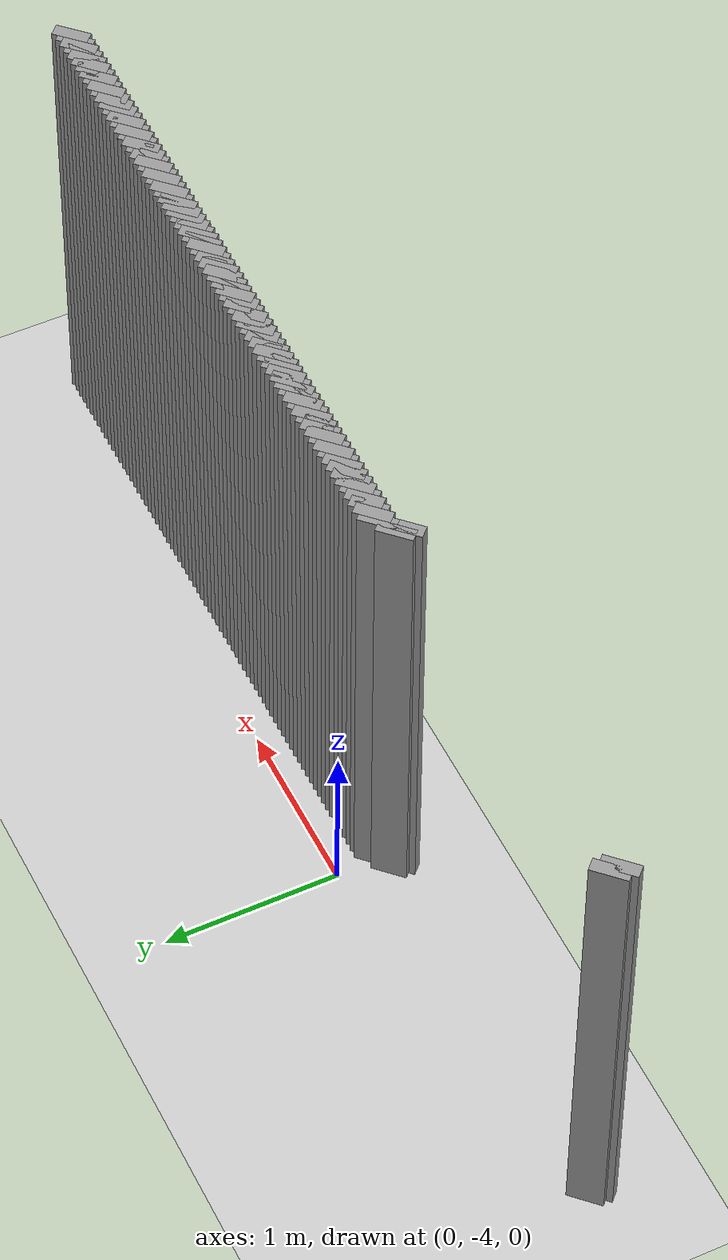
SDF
<sdf version="1.5">
 <world name="default">
  <include><uri>model://ground_plane</uri></include>
  <include><uri>model://sun</uri></include>
  <model name="grey_wall_1256">
   <static>1</static>
   <link name="link">
    <pose>0.025 -4.225  1.4 0 0 -0.785398163397</pose>
    <collision name="collision"><geometry><box><size>0.0707106781187 .2  2.8</size></box></geometry></collision>
    <visual name="visual">
     <cast_shadows>0</cast_shadows>
     <geometry><box><size>0.0707106781187 .2  2.8</size></box></geometry>
     <material>
      <script>
       <uri>model://grey_wall/materials/scripts</uri>
       <uri>model://grey_wall/materials/textures</uri>
       <name>vrc/grey_wall</name>
      </script>
     </material>
    </visual>
   </link>
  </model>
  <model name="grey_wall_1257">
   <static>1</static>
   <link name="link">
    <pose>0.075 -4.225  1.4 0 0 -0.785398163397</pose>
    <collision name="collision"><geometry><box><size>0.0707106781187 .2  2.8</size></box></geometry></collision>
    <visual name="visual">
     <cast_shadows>0</cast_shadows>
     <geometry><box><size>0.0707106781187 .2  2.8</size></box></geometry>
     <material>
      <script>
       <uri>model://grey_wall/materials/scripts</uri>
       <uri>model://grey_wall/materials/textures</uri>
       <name>vrc/grey_wall</name>
      </script>
     </material>
    </visual>
   </link>
  </model>
  <model name="grey_wall_1258">
   <static>1</static>
   <link name="link">
    <pose>0.125 -4.225  1.4 0 0 -0.785398163397</pose>
    <collision name="collision"><geometry><box><size>0.0707106781187 .2  2.8</size></box></geometry></collision>
    <visual name="visual">
     <cast_shadows>0</cast_shadows>
     <geometry><box><size>0.0707106781187 .2  2.8</size></box></geometry>
     <material>
      <script>
       <uri>model://grey_wall/materials/scripts</uri>
       <uri>model://grey_wall/materials/textures</uri>
       <name>vrc/grey_wall</name>
      </script>
     </material>
    </visual>
   </link>
  </model>
  <model name="grey_wall_1259">
   <static>1</static>
   <link name="link">
    <pose>0.175 -4.225  1.4 0 0 -0.785398163397</pose>
    <collision name="collision"><geometry><box><size>0.0707106781187 .2  2.8</size></box></geometry></collision>
    <visual name="visual">
     <cast_shadows>0</cast_shadows>
     <geometry><box><size>0.0707106781187 .2  2.8</size></box></geometry>
     <material>
      <script>
       <uri>model://grey_wall/materials/scripts</uri>
       <uri>model://grey_wall/materials/textures</uri>
       <name>vrc/grey_wall</name>
      </script>
     </material>
    </visual>
   </link>
  </model>
  <model name="grey_wall_1260">
   <static>1</static>
   <link name="link">
    <pose>0.225 -4.225  1.4 0 0 -0.785398163397</pose>
    <collision name="collision"><geometry><box><size>0.0707106781187 .2  2.8</size></box></geometry></collision>
    <visual name="visual">
     <cast_shadows>0</cast_shadows>
     <geometry><box><size>0.0707106781187 .2  2.8</size></box></geometry>
     <material>
      <script>
       <uri>model://grey_wall/materials/scripts</uri>
       <uri>model://grey_wall/materials/textures</uri>
       <name>vrc/grey_wall</name>
      </script>
     </material>
    </visual>
   </link>
  </model>
  <model name="grey_wall_1261">
   <static>1</static>
   <link name="link">
    <pose>0.275 -4.225  1.4 0 0 -0.785398163397</pose>
    <collision name="collision"><geometry><box><size>0.0707106781187 .2  2.8</size></box></geometry></collision>
    <visual name="visual">
     <cast_shadows>0</cast_shadows>
     <geometry><box><size>0.0707106781187 .2  2.8</size></box></geometry>
     <material>
      <script>
       <uri>model://grey_wall/materials/scripts</uri>
       <uri>model://grey_wall/materials/textures</uri>
       <name>vrc/grey_wall</name>
      </script>
     </material>
    </visual>
   </link>
  </model>
  <model name="grey_wall_1262">
   <static>1</static>
   <link name="link">
    <pose>0.325 -4.225  1.4 0 0 -0.785398163397</pose>
    <collision name="collision"><geometry><box><size>0.0707106781187 .2  2.8</size></box></geometry></collision>
    <visual name="visual">
     <cast_shadows>0</cast_shadows>
     <geometry><box><size>0.0707106781187 .2  2.8</size></box></geometry>
     <material>
      <script>
       <uri>model://grey_wall/materials/scripts</uri>
       <uri>model://grey_wall/materials/textures</uri>
       <name>vrc/grey_wall</name>
      </script>
     </material>
    </visual>
   </link>
  </model>
  <model name="grey_wall_1263">
   <static>1</static>
   <link name="link">
    <pose>0.375 -4.225  1.4 0 0 -0.785398163397</pose>
    <collision name="collision"><geometry><box><size>0.0707106781187 .2  2.8</size></box></geometry></collision>
    <visual name="visual">
     <cast_shadows>0</cast_shadows>
     <geometry><box><size>0.0707106781187 .2  2.8</size></box></geometry>
     <material>
      <script>
       <uri>model://grey_wall/materials/scripts</uri>
       <uri>model://grey_wall/materials/textures</uri>
       <name>vrc/grey_wall</name>
      </script>
     </material>
    </visual>
   </link>
  </model>
  <model name="grey_wall_1264">
   <static>1</static>
   <link name="link">
    <pose>0.425 -4.225  1.4 0 0 -0.785398163397</pose>
    <collision name="collision"><geometry><box><size>0.0707106781187 .2  2.8</size></box></geometry></collision>
    <visual name="visual">
     <cast_shadows>0</cast_shadows>
     <geometry><box><size>0.0707106781187 .2  2.8</size></box></geometry>
     <material>
      <script>
       <uri>model://grey_wall/materials/scripts</uri>
       <uri>model://grey_wall/materials/textures</uri>
       <name>vrc/grey_wall</name>
      </script>
     </material>
    </visual>
   </link>
  </model>
  <model name="grey_wall_1265">
   <static>1</static>
   <link name="link">
    <pose>0.475 -4.225  1.4 0 0 -0.785398163397</pose>
    <collision name="collision"><geometry><box><size>0.0707106781187 .2  2.8</size></box></geometry></collision>
    <visual name="visual">
     <cast_shadows>0</cast_shadows>
     <geometry><box><size>0.0707106781187 .2  2.8</size></box></geometry>
     <material>
      <script>
       <uri>model://grey_wall/materials/scripts</uri>
       <uri>model://grey_wall/materials/textures</uri>
       <name>vrc/grey_wall</name>
      </script>
     </material>
    </visual>
   </link>
  </model>
  <model name="grey_wall_1266">
   <static>1</static>
   <link name="link">
    <pose>0.525 -4.225  1.4 0 0 -0.785398163397</pose>
    <collision name="collision"><geometry><box><size>0.0707106781187 .2  2.8</size></box></geometry></collision>
    <visual name="visual">
     <cast_shadows>0</cast_shadows>
     <geometry><box><size>0.0707106781187 .2  2.8</size></box></geometry>
     <material>
      <script>
       <uri>model://grey_wall/materials/scripts</uri>
       <uri>model://grey_wall/materials/textures</uri>
       <name>vrc/grey_wall</name>
      </script>
     </material>
    </visual>
   </link>
  </model>
  <model name="grey_wall_1267">
   <static>1</static>
   <link name="link">
    <pose>0.575 -4.225  1.4 0 0 -0.785398163397</pose>
    <collision name="collision"><geometry><box><size>0.0707106781187 .2  2.8</size></box></geometry></collision>
    <visual name="visual">
     <cast_shadows>0</cast_shadows>
     <geometry><box><size>0.0707106781187 .2  2.8</size></box></geometry>
     <material>
      <script>
       <uri>model://grey_wall/materials/scripts</uri>
       <uri>model://grey_wall/materials/textures</uri>
       <name>vrc/grey_wall</name>
      </script>
     </material>
    </visual>
   </link>
  </model>
  <model name="grey_wall_1268">
   <static>1</static>
   <link name="link">
    <pose>0.625 -4.225  1.4 0 0 -0.785398163397</pose>
    <collision name="collision"><geometry><box><size>0.0707106781187 .2  2.8</size></box></geometry></collision>
    <visual name="visual">
     <cast_shadows>0</cast_shadows>
     <geometry><box><size>0.0707106781187 .2  2.8</size></box></geometry>
     <material>
      <script>
       <uri>model://grey_wall/materials/scripts</uri>
       <uri>model://grey_wall/materials/textures</uri>
       <name>vrc/grey_wall</name>
      </script>
     </material>
    </visual>
   </link>
  </model>
  <model name="grey_wall_1269">
   <static>1</static>
   <link name="link">
    <pose>0.675 -4.225  1.4 0 0 -0.785398163397</pose>
    <collision name="collision"><geometry><box><size>0.0707106781187 .2  2.8</size></box></geometry></collision>
    <visual name="visual">
     <cast_shadows>0</cast_shadows>
     <geometry><box><size>0.0707106781187 .2  2.8</size></box></geometry>
     <material>
      <script>
       <uri>model://grey_wall/materials/scripts</uri>
       <uri>model://grey_wall/materials/textures</uri>
       <name>vrc/grey_wall</name>
      </script>
     </material>
    </visual>
   </link>
  </model>
  <model name="grey_wall_1270">
   <static>1</static>
   <link name="link">
    <pose>0.725 -4.225  1.4 0 0 -0.785398163397</pose>
    <collision name="collision"><geometry><box><size>0.0707106781187 .2  2.8</size></box></geometry></collision>
    <visual name="visual">
     <cast_shadows>0</cast_shadows>
     <geometry><box><size>0.0707106781187 .2  2.8</size></box></geometry>
     <material>
      <script>
       <uri>model://grey_wall/materials/scripts</uri>
       <uri>model://grey_wall/materials/textures</uri>
       <name>vrc/grey_wall</name>
      </script>
     </material>
    </visual>
   </link>
  </model>
  <model name="grey_wall_1271">
   <static>1</static>
   <link name="link">
    <pose>0.775 -4.225  1.4 0 0 -0.785398163397</pose>
    <collision name="collision"><geometry><box><size>0.0707106781187 .2  2.8</size></box></geometry></collision>
    <visual name="visual">
     <cast_shadows>0</cast_shadows>
     <geometry><box><size>0.0707106781187 .2  2.8</size></box></geometry>
     <material>
      <script>
       <uri>model://grey_wall/materials/scripts</uri>
       <uri>model://grey_wall/materials/textures</uri>
       <name>vrc/grey_wall</name>
      </script>
     </material>
    </visual>
   </link>
  </model>
  <model name="grey_wall_1272">
   <static>1</static>
   <link name="link">
    <pose>0.825 -4.225  1.4 0 0 -0.785398163397</pose>
    <collision name="collision"><geometry><box><size>0.0707106781187 .2  2.8</size></box></geometry></collision>
    <visual name="visual">
     <cast_shadows>0</cast_shadows>
     <geometry><box><size>0.0707106781187 .2  2.8</size></box></geometry>
     <material>
      <script>
       <uri>model://grey_wall/materials/scripts</uri>
       <uri>model://grey_wall/materials/textures</uri>
       <name>vrc/grey_wall</name>
      </script>
     </material>
    </visual>
   </link>
  </model>
  <model name="grey_wall_1273">
   <static>1</static>
   <link name="link">
    <pose>0.875 -4.225  1.4 0 0 -0.785398163397</pose>
    <collision name="collision"><geometry><box><size>0.0707106781187 .2  2.8</size></box></geometry></collision>
    <visual name="visual">
     <cast_shadows>0</cast_shadows>
     <geometry><box><size>0.0707106781187 .2  2.8</size></box></geometry>
     <material>
      <script>
       <uri>model://grey_wall/materials/scripts</uri>
       <uri>model://grey_wall/materials/textures</uri>
       <name>vrc/grey_wall</name>
      </script>
     </material>
    </visual>
   </link>
  </model>
  <model name="grey_wall_1274">
   <static>1</static>
   <link name="link">
    <pose>0.925 -4.225  1.4 0 0 -0.785398163397</pose>
    <collision name="collision"><geometry><box><size>0.0707106781187 .2  2.8</size></box></geometry></collision>
    <visual name="visual">
     <cast_shadows>0</cast_shadows>
     <geometry><box><size>0.0707106781187 .2  2.8</size></box></geometry>
     <material>
      <script>
       <uri>model://grey_wall/materials/scripts</uri>
       <uri>model://grey_wall/materials/textures</uri>
       <name>vrc/grey_wall</name>
      </script>
     </material>
    </visual>
   </link>
  </model>
  <model name="grey_wall_1275">
   <static>1</static>
   <link name="link">
    <pose>0.975 -4.225  1.4 0 0 -0.785398163397</pose>
    <collision name="collision"><geometry><box><size>0.0707106781187 .2  2.8</size></box></geometry></collision>
    <visual name="visual">
     <cast_shadows>0</cast_shadows>
     <geometry><box><size>0.0707106781187 .2  2.8</size></box></geometry>
     <material>
      <script>
       <uri>model://grey_wall/materials/scripts</uri>
       <uri>model://grey_wall/materials/textures</uri>
       <name>vrc/grey_wall</name>
      </script>
     </material>
    </visual>
   </link>
  </model>
  <model name="grey_wall_1276">
   <static>1</static>
   <link name="link">
    <pose>1.025 -4.225  1.4 0 0 -0.785398163397</pose>
    <collision name="collision"><geometry><box><size>0.0707106781187 .2  2.8</size></box></geometry></collision>
    <visual name="visual">
     <cast_shadows>0</cast_shadows>
     <geometry><box><size>0.0707106781187 .2  2.8</size></box></geometry>
     <material>
      <script>
       <uri>model://grey_wall/materials/scripts</uri>
       <uri>model://grey_wall/materials/textures</uri>
       <name>vrc/grey_wall</name>
      </script>
     </material>
    </visual>
   </link>
  </model>
  <model name="grey_wall_1277">
   <static>1</static>
   <link name="link">
    <pose>1.075 -4.225  1.4 0 0 -0.785398163397</pose>
    <collision name="collision"><geometry><box><size>0.0707106781187 .2  2.8</size></box></geometry></collision>
    <visual name="visual">
     <cast_shadows>0</cast_shadows>
     <geometry><box><size>0.0707106781187 .2  2.8</size></box></geometry>
     <material>
      <script>
       <uri>model://grey_wall/materials/scripts</uri>
       <uri>model://grey_wall/materials/textures</uri>
       <name>vrc/grey_wall</name>
      </script>
     </material>
    </visual>
   </link>
  </model>
  <model name="grey_wall_1278">
   <static>1</static>
   <link name="link">
    <pose>1.125 -4.225  1.4 0 0 -0.785398163397</pose>
    <collision name="collision"><geometry><box><size>0.0707106781187 .2  2.8</size></box></geometry></collision>
    <visual name="visual">
     <cast_shadows>0</cast_shadows>
     <geometry><box><size>0.0707106781187 .2  2.8</size></box></geometry>
     <material>
      <script>
       <uri>model://grey_wall/materials/scripts</uri>
       <uri>model://grey_wall/materials/textures</uri>
       <name>vrc/grey_wall</name>
      </script>
     </material>
    </visual>
   </link>
  </model>
  <model name="grey_wall_1279">
   <static>1</static>
   <link name="link">
    <pose>1.175 -4.225  1.4 0 0 -0.785398163397</pose>
    <collision name="collision"><geometry><box><size>0.0707106781187 .2  2.8</size></box></geometry></collision>
    <visual name="visual">
     <cast_shadows>0</cast_shadows>
     <geometry><box><size>0.0707106781187 .2  2.8</size></box></geometry>
     <material>
      <script>
       <uri>model://grey_wall/materials/scripts</uri>
       <uri>model://grey_wall/materials/textures</uri>
       <name>vrc/grey_wall</name>
      </script>
     </material>
    </visual>
   </link>
  </model>
  <model name="grey_wall_1280">
   <static>1</static>
   <link name="link">
    <pose>1.225 -4.225  1.4 0 0 -0.785398163397</pose>
    <collision name="collision"><geometry><box><size>0.0707106781187 .2  2.8</size></box></geometry></collision>
    <visual name="visual">
     <cast_shadows>0</cast_shadows>
     <geometry><box><size>0.0707106781187 .2  2.8</size></box></geometry>
     <material>
      <script>
       <uri>model://grey_wall/materials/scripts</uri>
       <uri>model://grey_wall/materials/textures</uri>
       <name>vrc/grey_wall</name>
      </script>
     </material>
    </visual>
   </link>
  </model>
  <model name="grey_wall_1281">
   <static>1</static>
   <link name="link">
    <pose>1.275 -4.225  1.4 0 0 -0.785398163397</pose>
    <collision name="collision"><geometry><box><size>0.0707106781187 .2  2.8</size></box></geometry></collision>
    <visual name="visual">
     <cast_shadows>0</cast_shadows>
     <geometry><box><size>0.0707106781187 .2  2.8</size></box></geometry>
     <material>
      <script>
       <uri>model://grey_wall/materials/scripts</uri>
       <uri>model://grey_wall/materials/textures</uri>
       <name>vrc/grey_wall</name>
      </script>
     </material>
    </visual>
   </link>
  </model>
  <model name="grey_wall_1282">
   <static>1</static>
   <link name="link">
    <pose>1.325 -4.225  1.4 0 0 -0.785398163397</pose>
    <collision name="collision"><geometry><box><size>0.0707106781187 .2  2.8</size></box></geometry></collision>
    <visual name="visual">
     <cast_shadows>0</cast_shadows>
     <geometry><box><size>0.0707106781187 .2  2.8</size></box></geometry>
     <material>
      <script>
       <uri>model://grey_wall/materials/scripts</uri>
       <uri>model://grey_wall/materials/textures</uri>
       <name>vrc/grey_wall</name>
      </script>
     </material>
    </visual>
   </link>
  </model>
  <model name="grey_wall_1283">
   <static>1</static>
   <link name="link">
    <pose>1.375 -4.225  1.4 0 0 -0.785398163397</pose>
    <collision name="collision"><geometry><box><size>0.0707106781187 .2  2.8</size></box></geometry></collision>
    <visual name="visual">
     <cast_shadows>0</cast_shadows>
     <geometry><box><size>0.0707106781187 .2  2.8</size></box></geometry>
     <material>
      <script>
       <uri>model://grey_wall/materials/scripts</uri>
       <uri>model://grey_wall/materials/textures</uri>
       <name>vrc/grey_wall</name>
      </script>
     </material>
    </visual>
   </link>
  </model>
  <model name="grey_wall_1284">
   <static>1</static>
   <link name="link">
    <pose>1.425 -4.225  1.4 0 0 -0.785398163397</pose>
    <collision name="collision"><geometry><box><size>0.0707106781187 .2  2.8</size></box></geometry></collision>
    <visual name="visual">
     <cast_shadows>0</cast_shadows>
     <geometry><box><size>0.0707106781187 .2  2.8</size></box></geometry>
     <material>
      <script>
       <uri>model://grey_wall/materials/scripts</uri>
       <uri>model://grey_wall/materials/textures</uri>
       <name>vrc/grey_wall</name>
      </script>
     </material>
    </visual>
   </link>
  </model>
  <model name="grey_wall_1285">
   <static>1</static>
   <link name="link">
    <pose>1.475 -4.225  1.4 0 0 -0.785398163397</pose>
    <collision name="collision"><geometry><box><size>0.0707106781187 .2  2.8</size></box></geometry></collision>
    <visual name="visual">
     <cast_shadows>0</cast_shadows>
     <geometry><box><size>0.0707106781187 .2  2.8</size></box></geometry>
     <material>
      <script>
       <uri>model://grey_wall/materials/scripts</uri>
       <uri>model://grey_wall/materials/textures</uri>
       <name>vrc/grey_wall</name>
      </script>
     </material>
    </visual>
   </link>
  </model>
  <model name="grey_wall_1286">
   <static>1</static>
   <link name="link">
    <pose>1.525 -4.225  1.4 0 0 -0.785398163397</pose>
    <collision name="collision"><geometry><box><size>0.0707106781187 .2  2.8</size></box></geometry></collision>
    <visual name="visual">
     <cast_shadows>0</cast_shadows>
     <geometry><box><size>0.0707106781187 .2  2.8</size></box></geometry>
     <material>
      <script>
       <uri>model://grey_wall/materials/scripts</uri>
       <uri>model://grey_wall/materials/textures</uri>
       <name>vrc/grey_wall</name>
      </script>
     </material>
    </visual>
   </link>
  </model>
  <model name="grey_wall_1287">
   <static>1</static>
   <link name="link">
    <pose>1.575 -4.225  1.4 0 0 -0.785398163397</pose>
    <collision name="collision"><geometry><box><size>0.0707106781187 .2  2.8</size></box></geometry></collision>
    <visual name="visual">
     <cast_shadows>0</cast_shadows>
     <geometry><box><size>0.0707106781187 .2  2.8</size></box></geometry>
     <material>
      <script>
       <uri>model://grey_wall/materials/scripts</uri>
       <uri>model://grey_wall/materials/textures</uri>
       <name>vrc/grey_wall</name>
      </script>
     </material>
    </visual>
   </link>
  </model>
  <model name="grey_wall_1288">
   <static>1</static>
   <link name="link">
    <pose>1.625 -4.225  1.4 0 0 -0.785398163397</pose>
    <collision name="collision"><geometry><box><size>0.0707106781187 .2  2.8</size></box></geometry></collision>
    <visual name="visual">
     <cast_shadows>0</cast_shadows>
     <geometry><box><size>0.0707106781187 .2  2.8</size></box></geometry>
     <material>
      <script>
       <uri>model://grey_wall/materials/scripts</uri>
       <uri>model://grey_wall/materials/textures</uri>
       <name>vrc/grey_wall</name>
      </script>
     </material>
    </visual>
   </link>
  </model>
  <model name="grey_wall_1289">
   <static>1</static>
   <link name="link">
    <pose>1.675 -4.225  1.4 0 0 -0.785398163397</pose>
    <collision name="collision"><geometry><box><size>0.0707106781187 .2  2.8</size></box></geometry></collision>
    <visual name="visual">
     <cast_shadows>0</cast_shadows>
     <geometry><box><size>0.0707106781187 .2  2.8</size></box></geometry>
     <material>
      <script>
       <uri>model://grey_wall/materials/scripts</uri>
       <uri>model://grey_wall/materials/textures</uri>
       <name>vrc/grey_wall</name>
      </script>
     </material>
    </visual>
   </link>
  </model>
  <model name="grey_wall_1290">
   <static>1</static>
   <link name="link">
    <pose>1.725 -4.225  1.4 0 0 -0.785398163397</pose>
    <collision name="collision"><geometry><box><size>0.0707106781187 .2  2.8</size></box></geometry></collision>
    <visual name="visual">
     <cast_shadows>0</cast_shadows>
     <geometry><box><size>0.0707106781187 .2  2.8</size></box></geometry>
     <material>
      <script>
       <uri>model://grey_wall/materials/scripts</uri>
       <uri>model://grey_wall/materials/textures</uri>
       <name>vrc/grey_wall</name>
      </script>
     </material>
    </visual>
   </link>
  </model>
  <model name="grey_wall_1291">
   <static>1</static>
   <link name="link">
    <pose>1.775 -4.225  1.4 0 0 -0.785398163397</pose>
    <collision name="collision"><geometry><box><size>0.0707106781187 .2  2.8</size></box></geometry></collision>
    <visual name="visual">
     <cast_shadows>0</cast_shadows>
     <geometry><box><size>0.0707106781187 .2  2.8</size></box></geometry>
     <material>
      <script>
       <uri>model://grey_wall/materials/scripts</uri>
       <uri>model://grey_wall/materials/textures</uri>
       <name>vrc/grey_wall</name>
      </script>
     </material>
    </visual>
   </link>
  </model>
  <model name="grey_wall_1292">
   <static>1</static>
   <link name="link">
    <pose>1.825 -4.225  1.4 0 0 -0.785398163397</pose>
    <collision name="collision"><geometry><box><size>0.0707106781187 .2  2.8</size></box></geometry></collision>
    <visual name="visual">
     <cast_shadows>0</cast_shadows>
     <geometry><box><size>0.0707106781187 .2  2.8</size></box></geometry>
     <material>
      <script>
       <uri>model://grey_wall/materials/scripts</uri>
       <uri>model://grey_wall/materials/textures</uri>
       <name>vrc/grey_wall</name>
      </script>
     </material>
    </visual>
   </link>
  </model>
  <model name="grey_wall_1293">
   <static>1</static>
   <link name="link">
    <pose>1.875 -4.225  1.4 0 0 -0.785398163397</pose>
    <collision name="collision"><geometry><box><size>0.0707106781187 .2  2.8</size></box></geometry></collision>
    <visual name="visual">
     <cast_shadows>0</cast_shadows>
     <geometry><box><size>0.0707106781187 .2  2.8</size></box></geometry>
     <material>
      <script>
       <uri>model://grey_wall/materials/scripts</uri>
       <uri>model://grey_wall/materials/textures</uri>
       <name>vrc/grey_wall</name>
      </script>
     </material>
    </visual>
   </link>
  </model>
  <model name="grey_wall_1294">
   <static>1</static>
   <link name="link">
    <pose>1.925 -4.225  1.4 0 0 -0.785398163397</pose>
    <collision name="collision"><geometry><box><size>0.0707106781187 .2  2.8</size></box></geometry></collision>
    <visual name="visual">
     <cast_shadows>0</cast_shadows>
     <geometry><box><size>0.0707106781187 .2  2.8</size></box></geometry>
     <material>
      <script>
       <uri>model://grey_wall/materials/scripts</uri>
       <uri>model://grey_wall/materials/textures</uri>
       <name>vrc/grey_wall</name>
      </script>
     </material>
    </visual>
   </link>
  </model>
  <model name="grey_wall_1295">
   <static>1</static>
   <link name="link">
    <pose>1.975 -4.225  1.4 0 0 -0.785398163397</pose>
    <collision name="collision"><geometry><box><size>0.0707106781187 .2  2.8</size></box></geometry></collision>
    <visual name="visual">
     <cast_shadows>0</cast_shadows>
     <geometry><box><size>0.0707106781187 .2  2.8</size></box></geometry>
     <material>
      <script>
       <uri>model://grey_wall/materials/scripts</uri>
       <uri>model://grey_wall/materials/textures</uri>
       <name>vrc/grey_wall</name>
      </script>
     </material>
    </visual>
   </link>
  </model>
  <model name="grey_wall_1296">
   <static>1</static>
   <link name="link">
    <pose>2.025 -4.225  1.4 0 0 -0.785398163397</pose>
    <collision name="collision"><geometry><box><size>0.0707106781187 .2  2.8</size></box></geometry></collision>
    <visual name="visual">
     <cast_shadows>0</cast_shadows>
     <geometry><box><size>0.0707106781187 .2  2.8</size></box></geometry>
     <material>
      <script>
       <uri>model://grey_wall/materials/scripts</uri>
       <uri>model://grey_wall/materials/textures</uri>
       <name>vrc/grey_wall</name>
      </script>
     </material>
    </visual>
   </link>
  </model>
  <model name="grey_wall_1297">
   <static>1</static>
   <link name="link">
    <pose>2.075 -4.225  1.4 0 0 -0.785398163397</pose>
    <collision name="collision"><geometry><box><size>0.0707106781187 .2  2.8</size></box></geometry></collision>
    <visual name="visual">
     <cast_shadows>0</cast_shadows>
     <geometry><box><size>0.0707106781187 .2  2.8</size></box></geometry>
     <material>
      <script>
       <uri>model://grey_wall/materials/scripts</uri>
       <uri>model://grey_wall/materials/textures</uri>
       <name>vrc/grey_wall</name>
      </script>
     </material>
    </visual>
   </link>
  </model>
  <model name="grey_wall_1298">
   <static>1</static>
   <link name="link">
    <pose>2.125 -4.225  1.4 0 0 -0.785398163397</pose>
    <collision name="collision"><geometry><box><size>0.0707106781187 .2  2.8</size></box></geometry></collision>
    <visual name="visual">
     <cast_shadows>0</cast_shadows>
     <geometry><box><size>0.0707106781187 .2  2.8</size></box></geometry>
     <material>
      <script>
       <uri>model://grey_wall/materials/scripts</uri>
       <uri>model://grey_wall/materials/textures</uri>
       <name>vrc/grey_wall</name>
      </script>
     </material>
    </visual>
   </link>
  </model>
  <model name="grey_wall_1299">
   <static>1</static>
   <link name="link">
    <pose>2.175 -4.225  1.4 0 0 -0.785398163397</pose>
    <collision name="collision"><geometry><box><size>0.0707106781187 .2  2.8</size></box></geometry></collision>
    <visual name="visual">
     <cast_shadows>0</cast_shadows>
     <geometry><box><size>0.0707106781187 .2  2.8</size></box></geometry>
     <material>
      <script>
       <uri>model://grey_wall/materials/scripts</uri>
       <uri>model://grey_wall/materials/textures</uri>
       <name>vrc/grey_wall</name>
      </script>
     </material>
    </visual>
   </link>
  </model>
  <model name="grey_wall_1300">
   <static>1</static>
   <link name="link">
    <pose>2.225 -4.225  1.4 0 0 -0.785398163397</pose>
    <collision name="collision"><geometry><box><size>0.0707106781187 .2  2.8</size></box></geometry></collision>
    <visual name="visual">
     <cast_shadows>0</cast_shadows>
     <geometry><box><size>0.0707106781187 .2  2.8</size></box></geometry>
     <material>
      <script>
       <uri>model://grey_wall/materials/scripts</uri>
       <uri>model://grey_wall/materials/textures</uri>
       <name>vrc/grey_wall</name>
      </script>
     </material>
    </visual>
   </link>
  </model>
  <model name="grey_wall_1301">
   <static>1</static>
   <link name="link">
    <pose>2.275 -4.225  1.4 0 0 -0.785398163397</pose>
    <collision name="collision"><geometry><box><size>0.0707106781187 .2  2.8</size></box></geometry></collision>
    <visual name="visual">
     <cast_shadows>0</cast_shadows>
     <geometry><box><size>0.0707106781187 .2  2.8</size></box></geometry>
     <material>
      <script>
       <uri>model://grey_wall/materials/scripts</uri>
       <uri>model://grey_wall/materials/textures</uri>
       <name>vrc/grey_wall</name>
      </script>
     </material>
    </visual>
   </link>
  </model>
  <model name="grey_wall_1302">
   <static>1</static>
   <link name="link">
    <pose>2.325 -4.225  1.4 0 0 -0.785398163397</pose>
    <collision name="collision"><geometry><box><size>0.0707106781187 .2  2.8</size></box></geometry></collision>
    <visual name="visual">
     <cast_shadows>0</cast_shadows>
     <geometry><box><size>0.0707106781187 .2  2.8</size></box></geometry>
     <material>
      <script>
       <uri>model://grey_wall/materials/scripts</uri>
       <uri>model://grey_wall/materials/textures</uri>
       <name>vrc/grey_wall</name>
      </script>
     </material>
    </visual>
   </link>
  </model>
  <model name="grey_wall_1303">
   <static>1</static>
   <link name="link">
    <pose>2.375 -4.225  1.4 0 0 -0.785398163397</pose>
    <collision name="collision"><geometry><box><size>0.0707106781187 .2  2.8</size></box></geometry></collision>
    <visual name="visual">
     <cast_shadows>0</cast_shadows>
     <geometry><box><size>0.0707106781187 .2  2.8</size></box></geometry>
     <material>
      <script>
       <uri>model://grey_wall/materials/scripts</uri>
       <uri>model://grey_wall/materials/textures</uri>
       <name>vrc/grey_wall</name>
      </script>
     </material>
    </visual>
   </link>
  </model>
  <model name="grey_wall_1304">
   <static>1</static>
   <link name="link">
    <pose>2.425 -4.225  1.4 0 0 -0.785398163397</pose>
    <collision name="collision"><geometry><box><size>0.0707106781187 .2  2.8</size></box></geometry></collision>
    <visual name="visual">
     <cast_shadows>0</cast_shadows>
     <geometry><box><size>0.0707106781187 .2  2.8</size></box></geometry>
     <material>
      <script>
       <uri>model://grey_wall/materials/scripts</uri>
       <uri>model://grey_wall/materials/textures</uri>
       <name>vrc/grey_wall</name>
      </script>
     </material>
    </visual>
   </link>
  </model>
  <model name="grey_wall_1305">
   <static>1</static>
   <link name="link">
    <pose>2.475 -4.225  1.4 0 0 -0.785398163397</pose>
    <collision name="collision"><geometry><box><size>0.0707106781187 .2  2.8</size></box></geometry></collision>
    <visual name="visual">
     <cast_shadows>0</cast_shadows>
     <geometry><box><size>0.0707106781187 .2  2.8</size></box></geometry>
     <material>
      <script>
       <uri>model://grey_wall/materials/scripts</uri>
       <uri>model://grey_wall/materials/textures</uri>
       <name>vrc/grey_wall</name>
      </script>
     </material>
    </visual>
   </link>
  </model>
  <model name="grey_wall_1306">
   <static>1</static>
   <link name="link">
    <pose>2.525 -4.225  1.4 0 0 -0.785398163397</pose>
    <collision name="collision"><geometry><box><size>0.0707106781187 .2  2.8</size></box></geometry></collision>
    <visual name="visual">
     <cast_shadows>0</cast_shadows>
     <geometry><box><size>0.0707106781187 .2  2.8</size></box></geometry>
     <material>
      <script>
       <uri>model://grey_wall/materials/scripts</uri>
       <uri>model://grey_wall/materials/textures</uri>
       <name>vrc/grey_wall</name>
      </script>
     </material>
    </visual>
   </link>
  </model>
  <model name="grey_wall_1307">
   <static>1</static>
   <link name="link">
    <pose>2.575 -4.225  1.4 0 0 -0.785398163397</pose>
    <collision name="collision"><geometry><box><size>0.0707106781187 .2  2.8</size></box></geometry></collision>
    <visual name="visual">
     <cast_shadows>0</cast_shadows>
     <geometry><box><size>0.0707106781187 .2  2.8</size></box></geometry>
     <material>
      <script>
       <uri>model://grey_wall/materials/scripts</uri>
       <uri>model://grey_wall/materials/textures</uri>
       <name>vrc/grey_wall</name>
      </script>
     </material>
    </visual>
   </link>
  </model>
  <model name="grey_wall_1308">
   <static>1</static>
   <link name="link">
    <pose>2.625 -4.225  1.4 0 0 -0.785398163397</pose>
    <collision name="collision"><geometry><box><size>0.0707106781187 .2  2.8</size></box></geometry></collision>
    <visual name="visual">
     <cast_shadows>0</cast_shadows>
     <geometry><box><size>0.0707106781187 .2  2.8</size></box></geometry>
     <material>
      <script>
       <uri>model://grey_wall/materials/scripts</uri>
       <uri>model://grey_wall/materials/textures</uri>
       <name>vrc/grey_wall</name>
      </script>
     </material>
    </visual>
   </link>
  </model>
  <model name="grey_wall_1309">
   <static>1</static>
   <link name="link">
    <pose>2.675 -4.225  1.4 0 0 -0.785398163397</pose>
    <collision name="collision"><geometry><box><size>0.0707106781187 .2  2.8</size></box></geometry></collision>
    <visual name="visual">
     <cast_shadows>0</cast_shadows>
     <geometry><box><size>0.0707106781187 .2  2.8</size></box></geometry>
     <material>
      <script>
       <uri>model://grey_wall/materials/scripts</uri>
       <uri>model://grey_wall/materials/textures</uri>
       <name>vrc/grey_wall</name>
      </script>
     </material>
    </visual>
   </link>
  </model>
  <model name="grey_wall_1310">
   <static>1</static>
   <link name="link">
    <pose>2.725 -4.225  1.4 0 0 -0.785398163397</pose>
    <collision name="collision"><geometry><box><size>0.0707106781187 .2  2.8</size></box></geometry></collision>
    <visual name="visual">
     <cast_shadows>0</cast_shadows>
     <geometry><box><size>0.0707106781187 .2  2.8</size></box></geometry>
     <material>
      <script>
       <uri>model://grey_wall/materials/scripts</uri>
       <uri>model://grey_wall/materials/textures</uri>
       <name>vrc/grey_wall</name>
      </script>
     </material>
    </visual>
   </link>
  </model>
  <model name="grey_wall_1311">
   <static>1</static>
   <link name="link">
    <pose>2.775 -4.225  1.4 0 0 -0.785398163397</pose>
    <collision name="collision"><geometry><box><size>0.0707106781187 .2  2.8</size></box></geometry></collision>
    <visual name="visual">
     <cast_shadows>0</cast_shadows>
     <geometry><box><size>0.0707106781187 .2  2.8</size></box></geometry>
     <material>
      <script>
       <uri>model://grey_wall/materials/scripts</uri>
       <uri>model://grey_wall/materials/textures</uri>
       <name>vrc/grey_wall</name>
      </script>
     </material>
    </visual>
   </link>
  </model>
  <model name="grey_wall_1312">
   <static>1</static>
   <link name="link">
    <pose>2.825 -4.225  1.4 0 0 -0.785398163397</pose>
    <collision name="collision"><geometry><box><size>0.0707106781187 .2  2.8</size></box></geometry></collision>
    <visual name="visual">
     <cast_shadows>0</cast_shadows>
     <geometry><box><size>0.0707106781187 .2  2.8</size></box></geometry>
     <material>
      <script>
       <uri>model://grey_wall/materials/scripts</uri>
       <uri>model://grey_wall/materials/textures</uri>
       <name>vrc/grey_wall</name>
      </script>
     </material>
    </visual>
   </link>
  </model>
  <model name="grey_wall_1313">
   <static>1</static>
   <link name="link">
    <pose>2.875 -4.225  1.4 0 0 -0.785398163397</pose>
    <collision name="collision"><geometry><box><size>0.0707106781187 .2  2.8</size></box></geometry></collision>
    <visual name="visual">
     <cast_shadows>0</cast_shadows>
     <geometry><box><size>0.0707106781187 .2  2.8</size></box></geometry>
     <material>
      <script>
       <uri>model://grey_wall/materials/scripts</uri>
       <uri>model://grey_wall/materials/textures</uri>
       <name>vrc/grey_wall</name>
      </script>
     </material>
    </visual>
   </link>
  </model>
  <model name="grey_wall_1314">
   <static>1</static>
   <link name="link">
    <pose>2.925 -4.225  1.4 0 0 -0.785398163397</pose>
    <collision name="collision"><geometry><box><size>0.0707106781187 .2  2.8</size></box></geometry></collision>
    <visual name="visual">
     <cast_shadows>0</cast_shadows>
     <geometry><box><size>0.0707106781187 .2  2.8</size></box></geometry>
     <material>
      <script>
       <uri>model://grey_wall/materials/scripts</uri>
       <uri>model://grey_wall/materials/textures</uri>
       <name>vrc/grey_wall</name>
      </script>
     </material>
    </visual>
   </link>
  </model>
  <model name="grey_wall_1315">
   <static>1</static>
   <link name="link">
    <pose>2.975 -4.225  1.4 0 0 -0.785398163397</pose>
    <collision name="collision"><geometry><box><size>0.0707106781187 .2  2.8</size></box></geometry></collision>
    <visual name="visual">
     <cast_shadows>0</cast_shadows>
     <geometry><box><size>0.0707106781187 .2  2.8</size></box></geometry>
     <material>
      <script>
       <uri>model://grey_wall/materials/scripts</uri>
       <uri>model://grey_wall/materials/textures</uri>
       <name>vrc/grey_wall</name>
      </script>
     </material>
    </visual>
   </link>
  </model>
  <model name="grey_wall_1316">
   <static>1</static>
   <link name="link">
    <pose>3.025 -4.225  1.4 0 0 -0.785398163397</pose>
    <collision name="collision"><geometry><box><size>0.0707106781187 .2  2.8</size></box></geometry></collision>
    <visual name="visual">
     <cast_shadows>0</cast_shadows>
     <geometry><box><size>0.0707106781187 .2  2.8</size></box></geometry>
     <material>
      <script>
       <uri>model://grey_wall/materials/scripts</uri>
       <uri>model://grey_wall/materials/textures</uri>
       <name>vrc/grey_wall</name>
      </script>
     </material>
    </visual>
   </link>
  </model>
  <model name="grey_wall_1317">
   <static>1</static>
   <link name="link">
    <pose>3.075 -4.225  1.4 0 0 -0.785398163397</pose>
    <collision name="collision"><geometry><box><size>0.0707106781187 .2  2.8</size></box></geometry></collision>
    <visual name="visual">
     <cast_shadows>0</cast_shadows>
     <geometry><box><size>0.0707106781187 .2  2.8</size></box></geometry>
     <material>
      <script>
       <uri>model://grey_wall/materials/scripts</uri>
       <uri>model://grey_wall/materials/textures</uri>
       <name>vrc/grey_wall</name>
      </script>
     </material>
    </visual>
   </link>
  </model>
  <model name="grey_wall_1318">
   <static>1</static>
   <link name="link">
    <pose>3.125 -4.225  1.4 0 0 -0.785398163397</pose>
    <collision name="collision"><geometry><box><size>0.0707106781187 .2  2.8</size></box></geometry></collision>
    <visual name="visual">
     <cast_shadows>0</cast_shadows>
     <geometry><box><size>0.0707106781187 .2  2.8</size></box></geometry>
     <material>
      <script>
       <uri>model://grey_wall/materials/scripts</uri>
       <uri>model://grey_wall/materials/textures</uri>
       <name>vrc/grey_wall</name>
      </script>
     </material>
    </visual>
   </link>
  </model>
  <model name="grey_wall_1319">
   <static>1</static>
   <link name="link">
    <pose>3.175 -4.225  1.4 0 0 -0.785398163397</pose>
    <collision name="collision"><geometry><box><size>0.0707106781187 .2  2.8</size></box></geometry></collision>
    <visual name="visual">
     <cast_shadows>0</cast_shadows>
     <geometry><box><size>0.0707106781187 .2  2.8</size></box></geometry>
     <material>
      <script>
       <uri>model://grey_wall/materials/scripts</uri>
       <uri>model://grey_wall/materials/textures</uri>
       <name>vrc/grey_wall</name>
      </script>
     </material>
    </visual>
   </link>
  </model>
  <model name="grey_wall_1320">
   <static>1</static>
   <link name="link">
    <pose>3.225 -4.225  1.4 0 0 -0.785398163397</pose>
    <collision name="collision"><geometry><box><size>0.0707106781187 .2  2.8</size></box></geometry></collision>
    <visual name="visual">
     <cast_shadows>0</cast_shadows>
     <geometry><box><size>0.0707106781187 .2  2.8</size></box></geometry>
     <material>
      <script>
       <uri>model://grey_wall/materials/scripts</uri>
       <uri>model://grey_wall/materials/textures</uri>
       <name>vrc/grey_wall</name>
      </script>
     </material>
    </visual>
   </link>
  </model>
  <model name="grey_wall_1321">
   <static>1</static>
   <link name="link">
    <pose>3.275 -4.225  1.4 0 0 -0.785398163397</pose>
    <collision name="collision"><geometry><box><size>0.0707106781187 .2  2.8</size></box></geometry></collision>
    <visual name="visual">
     <cast_shadows>0</cast_shadows>
     <geometry><box><size>0.0707106781187 .2  2.8</size></box></geometry>
     <material>
      <script>
       <uri>model://grey_wall/materials/scripts</uri>
       <uri>model://grey_wall/materials/textures</uri>
       <name>vrc/grey_wall</name>
      </script>
     </material>
    </visual>
   </link>
  </model>
  <model name="grey_wall_1322">
   <static>1</static>
   <link name="link">
    <pose>3.325 -4.225  1.4 0 0 -0.785398163397</pose>
    <collision name="collision"><geometry><box><size>0.0707106781187 .2  2.8</size></box></geometry></collision>
    <visual name="visual">
     <cast_shadows>0</cast_shadows>
     <geometry><box><size>0.0707106781187 .2  2.8</size></box></geometry>
     <material>
      <script>
       <uri>model://grey_wall/materials/scripts</uri>
       <uri>model://grey_wall/materials/textures</uri>
       <name>vrc/grey_wall</name>
      </script>
     </material>
    </visual>
   </link>
  </model>
  <model name="grey_wall_1323">
   <static>1</static>
   <link name="link">
    <pose>3.375 -4.225  1.4 0 0 -0.785398163397</pose>
    <collision name="collision"><geometry><box><size>0.0707106781187 .2  2.8</size></box></geometry></collision>
    <visual name="visual">
     <cast_shadows>0</cast_shadows>
     <geometry><box><size>0.0707106781187 .2  2.8</size></box></geometry>
     <material>
      <script>
       <uri>model://grey_wall/materials/scripts</uri>
       <uri>model://grey_wall/materials/textures</uri>
       <name>vrc/grey_wall</name>
      </script>
     </material>
    </visual>
   </link>
  </model>
  <model name="grey_wall_1324">
   <static>1</static>
   <link name="link">
    <pose>3.425 -4.225  1.4 0 0 -0.785398163397</pose>
    <collision name="collision"><geometry><box><size>0.0707106781187 .2  2.8</size></box></geometry></collision>
    <visual name="visual">
     <cast_shadows>0</cast_shadows>
     <geometry><box><size>0.0707106781187 .2  2.8</size></box></geometry>
     <material>
      <script>
       <uri>model://grey_wall/materials/scripts</uri>
       <uri>model://grey_wall/materials/textures</uri>
       <name>vrc/grey_wall</name>
      </script>
     </material>
    </visual>
   </link>
  </model>
  <model name="grey_wall_1325">
   <static>1</static>
   <link name="link">
    <pose>3.475 -4.225  1.4 0 0 -0.785398163397</pose>
    <collision name="collision"><geometry><box><size>0.0707106781187 .2  2.8</size></box></geometry></collision>
    <visual name="visual">
     <cast_shadows>0</cast_shadows>
     <geometry><box><size>0.0707106781187 .2  2.8</size></box></geometry>
     <material>
      <script>
       <uri>model://grey_wall/materials/scripts</uri>
       <uri>model://grey_wall/materials/textures</uri>
       <name>vrc/grey_wall</name>
      </script>
     </material>
    </visual>
   </link>
  </model>
  <model name="grey_wall_1326">
   <static>1</static>
   <link name="link">
    <pose>3.525 -4.225  1.4 0 0 -0.785398163397</pose>
    <collision name="collision"><geometry><box><size>0.0707106781187 .2  2.8</size></box></geometry></collision>
    <visual name="visual">
     <cast_shadows>0</cast_shadows>
     <geometry><box><size>0.0707106781187 .2  2.8</size></box></geometry>
     <material>
      <script>
       <uri>model://grey_wall/materials/scripts</uri>
       <uri>model://grey_wall/materials/textures</uri>
       <name>vrc/grey_wall</name>
      </script>
     </material>
    </visual>
   </link>
  </model>
  <model name="grey_wall_1327">
   <static>1</static>
   <link name="link">
    <pose>3.575 -4.225  1.4 0 0 -0.785398163397</pose>
    <collision name="collision"><geometry><box><size>0.0707106781187 .2  2.8</size></box></geometry></collision>
    <visual name="visual">
     <cast_shadows>0</cast_shadows>
     <geometry><box><size>0.0707106781187 .2  2.8</size></box></geometry>
     <material>
      <script>
       <uri>model://grey_wall/materials/scripts</uri>
       <uri>model://grey_wall/materials/textures</uri>
       <name>vrc/grey_wall</name>
      </script>
     </material>
    </visual>
   </link>
  </model>
  <model name="grey_wall_1328">
   <static>1</static>
   <link name="link">
    <pose>3.625 -4.225  1.4 0 0 -0.785398163397</pose>
    <collision name="collision"><geometry><box><size>0.0707106781187 .2  2.8</size></box></geometry></collision>
    <visual name="visual">
     <cast_shadows>0</cast_shadows>
     <geometry><box><size>0.0707106781187 .2  2.8</size></box></geometry>
     <material>
      <script>
       <uri>model://grey_wall/materials/scripts</uri>
       <uri>model://grey_wall/materials/textures</uri>
       <name>vrc/grey_wall</name>
      </script>
     </material>
    </visual>
   </link>
  </model>
  <model name="grey_wall_1329">
   <static>1</static>
   <link name="link">
    <pose>3.675 -4.225  1.4 0 0 -0.785398163397</pose>
    <collision name="collision"><geometry><box><size>0.0707106781187 .2  2.8</size></box></geometry></collision>
    <visual name="visual">
     <cast_shadows>0</cast_shadows>
     <geometry><box><size>0.0707106781187 .2  2.8</size></box></geometry>
     <material>
      <script>
       <uri>model://grey_wall/materials/scripts</uri>
       <uri>model://grey_wall/materials/textures</uri>
       <name>vrc/grey_wall</name>
      </script>
     </material>
    </visual>
   </link>
  </model>
  <model name="grey_wall_1330">
   <static>1</static>
   <link name="link">
    <pose>3.725 -4.225  1.4 0 0 -0.785398163397</pose>
    <collision name="collision"><geometry><box><size>0.0707106781187 .2  2.8</size></box></geometry></collision>
    <visual name="visual">
     <cast_shadows>0</cast_shadows>
     <geometry><box><size>0.0707106781187 .2  2.8</size></box></geometry>
     <material>
      <script>
       <uri>model://grey_wall/materials/scripts</uri>
       <uri>model://grey_wall/materials/textures</uri>
       <name>vrc/grey_wall</name>
      </script>
     </material>
    </visual>
   </link>
  </model>
  <model name="grey_wall_1331">
   <static>1</static>
   <link name="link">
    <pose>-2.325 -4.275  1.4 0 0 -0.785398163397</pose>
    <collision name="collision"><geometry><box><size>0.0707106781187 .2  2.8</size></box></geometry></collision>
    <visual name="visual">
     <cast_shadows>0</cast_shadows>
     <geometry><box><size>0.0707106781187 .2  2.8</size></box></geometry>
     <material>
      <script>
       <uri>model://grey_wall/materials/scripts</uri>
       <uri>model://grey_wall/materials/textures</uri>
       <name>vrc/grey_wall</name>
      </script>
     </material>
    </visual>
   </link>
  </model>
  <model name="grey_wall_1332">
   <static>1</static>
   <link name="link">
    <pose>-0.075 -4.275  1.4 0 0 -0.785398163397</pose>
    <collision name="collision"><geometry><box><size>0.0707106781187 .2  2.8</size></box></geometry></collision>
    <visual name="visual">
     <cast_shadows>0</cast_shadows>
     <geometry><box><size>0.0707106781187 .2  2.8</size></box></geometry>
     <material>
      <script>
       <uri>model://grey_wall/materials/scripts</uri>
       <uri>model://grey_wall/materials/textures</uri>
       <name>vrc/grey_wall</name>
      </script>
     </material>
    </visual>
   </link>
  </model>
  <model name="grey_wall_1333">
   <static>1</static>
   <link name="link">
    <pose>-2.325 -4.325  1.4 0 0 -0.785398163397</pose>
    <collision name="collision"><geometry><box><size>0.0707106781187 .2  2.8</size></box></geometry></collision>
    <visual name="visual">
     <cast_shadows>0</cast_shadows>
     <geometry><box><size>0.0707106781187 .2  2.8</size></box></geometry>
     <material>
      <script>
       <uri>model://grey_wall/materials/scripts</uri>
       <uri>model://grey_wall/materials/textures</uri>
       <name>vrc/grey_wall</name>
      </script>
     </material>
    </visual>
   </link>
  </model>
  <model name="grey_wall_1334">
   <static>1</static>
   <link name="link">
    <pose>-0.075 -4.325  1.4 0 0 -0.785398163397</pose>
    <collision name="collision"><geometry><box><size>0.0707106781187 .2  2.8</size></box></geometry></collision>
    <visual name="visual">
     <cast_shadows>0</cast_shadows>
     <geometry><box><size>0.0707106781187 .2  2.8</size></box></geometry>
     <material>
      <script>
       <uri>model://grey_wall/materials/scripts</uri>
       <uri>model://grey_wall/materials/textures</uri>
       <name>vrc/grey_wall</name>
      </script>
     </material>
    </visual>
   </link>
  </model>
 </world>
</sdf>
